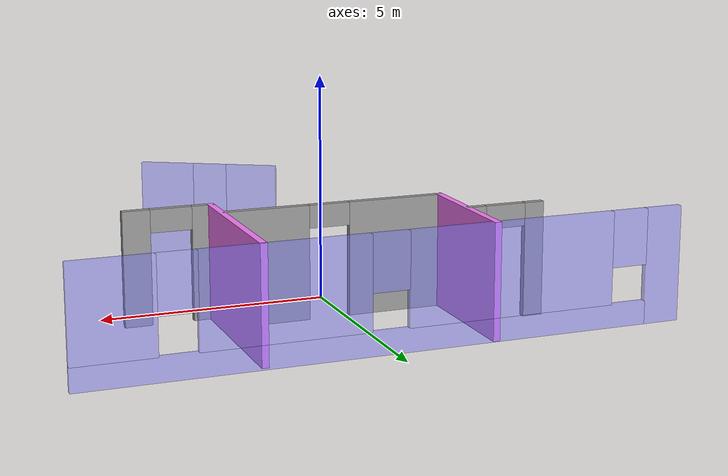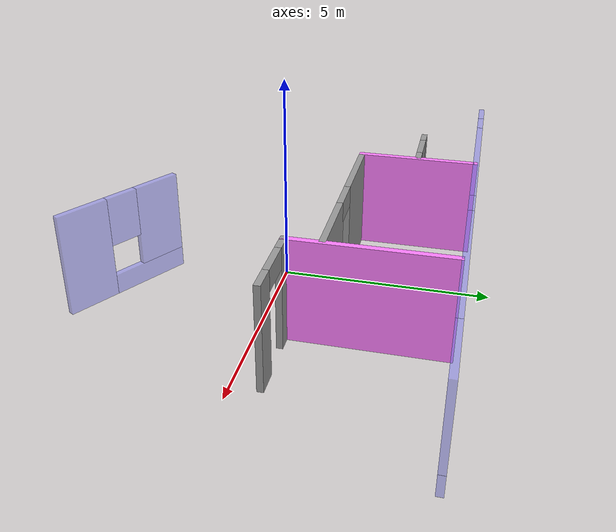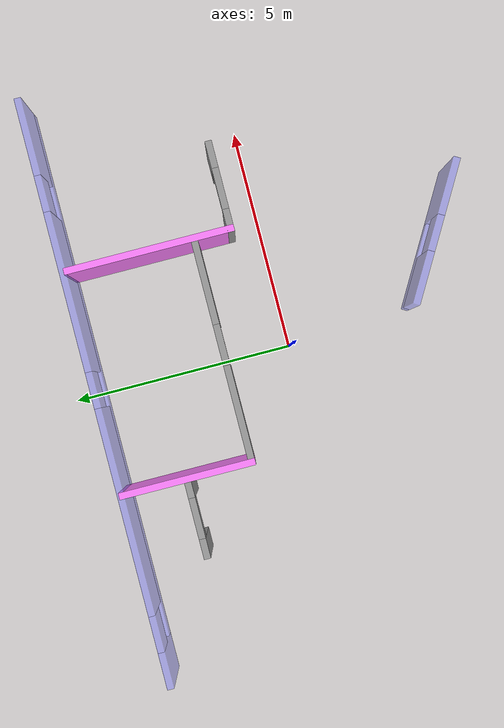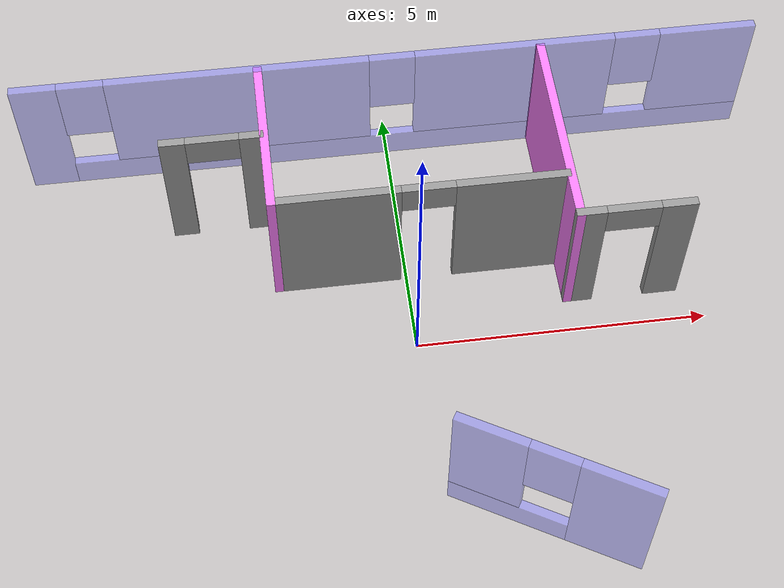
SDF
<sdf version="1.6">
 <model name="house">
  <link name="Wall_11">
   <pose>1.54767 -3.58085 0 0 -0 2.61799</pose>
   <inertial>
    <mass>1</mass>
    <inertia><ixx>1</ixx><ixy>0</ixy><ixz>0</ixz><iyy>1</iyy><iyz>0</iyz><izz>1</izz></inertia>
   </inertial>
   <visual name="Wall_11_Visual_0">
    <pose>-0.990098 0 1.25 0 -0 0</pose>
    <geometry><box><size>1.2698 0.15 2.5</size></box></geometry>
    <material>
     <script><uri>file://media/materials/scripts/gazebo.material</uri><name>Gazebo/Grey</name></script>
     <ambient>0.5 0.5 1 0.5</ambient>
     <shader type="pixel"><normal_map>__default__</normal_map></shader>
     <diffuse>0.7 0.7 0.7 1</diffuse>
     <specular>0.01 0.01 0.01 1</specular>
     <emissive>0 0 0 1</emissive>
    </material>
    <meta><layer>0</layer></meta>
   </visual>
   <visual name="Wall_11_Visual_1">
    <pose>0.634902 0 0.25 0 -0 0</pose>
    <geometry><box><size>1.9802 0.15 0.5</size></box></geometry>
    <material>
     <script><uri>file://media/materials/scripts/gazebo.material</uri><name>Gazebo/Grey</name></script>
     <ambient>0.5 0.5 1 0.5</ambient>
     <shader type="pixel"><normal_map>__default__</normal_map></shader>
     <diffuse>0.7 0.7 0.7 1</diffuse>
     <specular>0.01 0.01 0.01 1</specular>
     <emissive>0 0 0 1</emissive>
    </material>
    <meta><layer>0</layer></meta>
   </visual>
   <visual name="Wall_11_Visual_2">
    <pose>1.0349 0 1.5 0 -0 0</pose>
    <geometry><box><size>1.1802 0.15 2</size></box></geometry>
    <material>
     <script><uri>file://media/materials/scripts/gazebo.material</uri><name>Gazebo/Grey</name></script>
     <ambient>0.5 0.5 1 0.5</ambient>
     <shader type="pixel"><normal_map>__default__</normal_map></shader>
     <diffuse>0.7 0.7 0.7 1</diffuse>
     <specular>0.01 0.01 0.01 1</specular>
     <emissive>0 0 0 1</emissive>
    </material>
    <meta><layer>0</layer></meta>
   </visual>
   <visual name="Wall_11_Visual_3">
    <pose>0.044803 0 1.9 0 -0 0</pose>
    <geometry><box><size>0.8 0.15 1.2</size></box></geometry>
    <material>
     <script><uri>file://media/materials/scripts/gazebo.material</uri><name>Gazebo/Grey</name></script>
     <ambient>0.5 0.5 1 0.5</ambient>
     <shader type="pixel"><normal_map>__default__</normal_map></shader>
     <diffuse>0.7 0.7 0.7 1</diffuse>
     <specular>0.01 0.01 0.01 1</specular>
     <emissive>0 0 0 1</emissive>
    </material>
    <meta><layer>0</layer></meta>
   </visual>
   <collision name="Wall_11_Collision_0">
    <pose>-0.990098 0 1.25 0 -0 0</pose>
    <geometry><box><size>1.2698 0.15 2.5</size></box></geometry>
    <surface>
     <friction>
      <ode><mu>1</mu><mu2>1</mu2><fdir1>0 0 0</fdir1><slip1>0</slip1><slip2>0</slip2></ode>
      <torsional>
       <coefficient>1</coefficient>
       <patch_radius>0</patch_radius>
       <surface_radius>0</surface_radius>
       <use_patch_radius>1</use_patch_radius>
       <ode><slip>0</slip></ode>
      </torsional>
     </friction>
     <bounce><restitution_coefficient>0</restitution_coefficient><threshold>1e+06</threshold></bounce>
     <contact>
      <collide_without_contact>0</collide_without_contact>
      <collide_without_contact_bitmask>1</collide_without_contact_bitmask>
      <collide_bitmask>1</collide_bitmask>
      <ode>
       <soft_cfm>0</soft_cfm>
       <soft_erp>0.2</soft_erp>
       <kp>1e+13</kp>
       <kd>1</kd>
       <max_vel>0.01</max_vel>
       <min_depth>0</min_depth>
      </ode>
      <bullet>
       <split_impulse>1</split_impulse>
       <split_impulse_penetration_threshold>-0.01</split_impulse_penetration_threshold>
       <soft_cfm>0</soft_cfm>
       <soft_erp>0.2</soft_erp>
       <kp>1e+13</kp>
       <kd>1</kd>
      </bullet>
     </contact>
    </surface>
   </collision>
   <collision name="Wall_11_Collision_1">
    <pose>0.634902 0 0.25 0 -0 0</pose>
    <geometry><box><size>1.9802 0.15 0.5</size></box></geometry>
    <surface>
     <friction>
      <ode><mu>1</mu><mu2>1</mu2><fdir1>0 0 0</fdir1><slip1>0</slip1><slip2>0</slip2></ode>
      <torsional>
       <coefficient>1</coefficient>
       <patch_radius>0</patch_radius>
       <surface_radius>0</surface_radius>
       <use_patch_radius>1</use_patch_radius>
       <ode><slip>0</slip></ode>
      </torsional>
     </friction>
     <bounce><restitution_coefficient>0</restitution_coefficient><threshold>1e+06</threshold></bounce>
     <contact>
      <collide_without_contact>0</collide_without_contact>
      <collide_without_contact_bitmask>1</collide_without_contact_bitmask>
      <collide_bitmask>1</collide_bitmask>
      <ode>
       <soft_cfm>0</soft_cfm>
       <soft_erp>0.2</soft_erp>
       <kp>1e+13</kp>
       <kd>1</kd>
       <max_vel>0.01</max_vel>
       <min_depth>0</min_depth>
      </ode>
      <bullet>
       <split_impulse>1</split_impulse>
       <split_impulse_penetration_threshold>-0.01</split_impulse_penetration_threshold>
       <soft_cfm>0</soft_cfm>
       <soft_erp>0.2</soft_erp>
       <kp>1e+13</kp>
       <kd>1</kd>
      </bullet>
     </contact>
    </surface>
   </collision>
   <collision name="Wall_11_Collision_2">
    <pose>1.0349 0 1.5 0 -0 0</pose>
    <geometry><box><size>1.1802 0.15 2</size></box></geometry>
    <surface>
     <friction>
      <ode><mu>1</mu><mu2>1</mu2><fdir1>0 0 0</fdir1><slip1>0</slip1><slip2>0</slip2></ode>
      <torsional>
       <coefficient>1</coefficient>
       <patch_radius>0</patch_radius>
       <surface_radius>0</surface_radius>
       <use_patch_radius>1</use_patch_radius>
       <ode><slip>0</slip></ode>
      </torsional>
     </friction>
     <bounce><restitution_coefficient>0</restitution_coefficient><threshold>1e+06</threshold></bounce>
     <contact>
      <collide_without_contact>0</collide_without_contact>
      <collide_without_contact_bitmask>1</collide_without_contact_bitmask>
      <collide_bitmask>1</collide_bitmask>
      <ode>
       <soft_cfm>0</soft_cfm>
       <soft_erp>0.2</soft_erp>
       <kp>1e+13</kp>
       <kd>1</kd>
       <max_vel>0.01</max_vel>
       <min_depth>0</min_depth>
      </ode>
      <bullet>
       <split_impulse>1</split_impulse>
       <split_impulse_penetration_threshold>-0.01</split_impulse_penetration_threshold>
       <soft_cfm>0</soft_cfm>
       <soft_erp>0.2</soft_erp>
       <kp>1e+13</kp>
       <kd>1</kd>
      </bullet>
     </contact>
    </surface>
   </collision>
   <collision name="Wall_11_Collision_3">
    <pose>0.044803 0 1.9 0 -0 0</pose>
    <geometry><box><size>0.8 0.15 1.2</size></box></geometry>
    <surface>
     <friction>
      <ode><mu>1</mu><mu2>1</mu2><fdir1>0 0 0</fdir1><slip1>0</slip1><slip2>0</slip2></ode>
      <torsional>
       <coefficient>1</coefficient>
       <patch_radius>0</patch_radius>
       <surface_radius>0</surface_radius>
       <use_patch_radius>1</use_patch_radius>
       <ode><slip>0</slip></ode>
      </torsional>
     </friction>
     <bounce><restitution_coefficient>0</restitution_coefficient><threshold>1e+06</threshold></bounce>
     <contact>
      <collide_without_contact>0</collide_without_contact>
      <collide_without_contact_bitmask>1</collide_without_contact_bitmask>
      <collide_bitmask>1</collide_bitmask>
      <ode>
       <soft_cfm>0</soft_cfm>
       <soft_erp>0.2</soft_erp>
       <kp>1e+13</kp>
       <kd>1</kd>
       <max_vel>0.01</max_vel>
       <min_depth>0</min_depth>
      </ode>
      <bullet>
       <split_impulse>1</split_impulse>
       <split_impulse_penetration_threshold>-0.01</split_impulse_penetration_threshold>
       <soft_cfm>0</soft_cfm>
       <soft_erp>0.2</soft_erp>
       <kp>1e+13</kp>
       <kd>1</kd>
      </bullet>
     </contact>
    </surface>
   </collision>
  </link>
  <link name="Wall_27">
   <pose>3.62671 0.655851 0 0 -0 3.14159</pose>
   <inertial>
    <mass>1</mass>
    <inertia><ixx>1</ixx><ixy>0</ixy><ixz>0</ixz><iyy>1</iyy><iyz>0</iyz><izz>1</izz></inertia>
   </inertial>
   <visual name="Wall_27_Visual_0">
    <pose>-0.702488 0 1.25 0 -0 0</pose>
    <geometry><box><size>0.595025 0.15 2.5</size></box></geometry>
    <material>
     <script><uri>file://media/materials/scripts/gazebo.material</uri><name>Gazebo/Grey</name></script>
     <ambient>0.5 0.5 0.5 0.5</ambient>
     <shader type="pixel"><normal_map>__default__</normal_map></shader>
     <diffuse>0.7 0.7 0.7 1</diffuse>
     <specular>0.01 0.01 0.01 1</specular>
     <emissive>0 0 0 1</emissive>
    </material>
    <meta><layer>0</layer></meta>
   </visual>
   <visual name="Wall_27_Visual_1">
    <pose>0.747512 0 1.25 0 -0 0</pose>
    <geometry><box><size>0.504975 0.15 2.5</size></box></geometry>
    <material>
     <script><uri>file://media/materials/scripts/gazebo.material</uri><name>Gazebo/Grey</name></script>
     <ambient>0.5 0.5 0.5 0.5</ambient>
     <shader type="pixel"><normal_map>__default__</normal_map></shader>
     <diffuse>0.7 0.7 0.7 1</diffuse>
     <specular>0.01 0.01 0.01 1</specular>
     <emissive>0 0 0 1</emissive>
    </material>
    <meta><layer>0</layer></meta>
   </visual>
   <visual name="Wall_27_Visual_2">
    <pose>0.045025 0 2.25 0 -0 0</pose>
    <geometry><box><size>0.9 0.15 0.5</size></box></geometry>
    <material>
     <script><uri>file://media/materials/scripts/gazebo.material</uri><name>Gazebo/Grey</name></script>
     <ambient>0.5 0.5 0.5 0.5</ambient>
     <shader type="pixel"><normal_map>__default__</normal_map></shader>
     <diffuse>0.7 0.7 0.7 1</diffuse>
     <specular>0.01 0.01 0.01 1</specular>
     <emissive>0 0 0 1</emissive>
    </material>
    <meta><layer>0</layer></meta>
   </visual>
   <collision name="Wall_27_Collision_0">
    <pose>-0.702488 0 1.25 0 -0 0</pose>
    <geometry><box><size>0.595025 0.15 2.5</size></box></geometry>
    <surface>
     <friction>
      <ode><mu>1</mu><mu2>1</mu2><fdir1>0 0 0</fdir1><slip1>0</slip1><slip2>0</slip2></ode>
      <torsional>
       <coefficient>1</coefficient>
       <patch_radius>0</patch_radius>
       <surface_radius>0</surface_radius>
       <use_patch_radius>1</use_patch_radius>
       <ode><slip>0</slip></ode>
      </torsional>
     </friction>
     <bounce><restitution_coefficient>0</restitution_coefficient><threshold>1e+06</threshold></bounce>
     <contact>
      <collide_without_contact>0</collide_without_contact>
      <collide_without_contact_bitmask>1</collide_without_contact_bitmask>
      <collide_bitmask>1</collide_bitmask>
      <ode>
       <soft_cfm>0</soft_cfm>
       <soft_erp>0.2</soft_erp>
       <kp>1e+13</kp>
       <kd>1</kd>
       <max_vel>0.01</max_vel>
       <min_depth>0</min_depth>
      </ode>
      <bullet>
       <split_impulse>1</split_impulse>
       <split_impulse_penetration_threshold>-0.01</split_impulse_penetration_threshold>
       <soft_cfm>0</soft_cfm>
       <soft_erp>0.2</soft_erp>
       <kp>1e+13</kp>
       <kd>1</kd>
      </bullet>
     </contact>
    </surface>
   </collision>
   <collision name="Wall_27_Collision_2">
    <pose>0.045025 0 2.25 0 -0 0</pose>
    <geometry><box><size>0.9 0.15 0.5</size></box></geometry>
    <surface>
     <friction>
      <ode><mu>1</mu><mu2>1</mu2><fdir1>0 0 0</fdir1><slip1>0</slip1><slip2>0</slip2></ode>
      <torsional>
       <coefficient>1</coefficient>
       <patch_radius>0</patch_radius>
       <surface_radius>0</surface_radius>
       <use_patch_radius>1</use_patch_radius>
       <ode><slip>0</slip></ode>
      </torsional>
     </friction>
     <bounce><restitution_coefficient>0</restitution_coefficient><threshold>1e+06</threshold></bounce>
     <contact>
      <collide_without_contact>0</collide_without_contact>
      <collide_without_contact_bitmask>1</collide_without_contact_bitmask>
      <collide_bitmask>1</collide_bitmask>
      <ode>
       <soft_cfm>0</soft_cfm>
       <soft_erp>0.2</soft_erp>
       <kp>1e+13</kp>
       <kd>1</kd>
       <max_vel>0.01</max_vel>
       <min_depth>0</min_depth>
      </ode>
      <bullet>
       <split_impulse>1</split_impulse>
       <split_impulse_penetration_threshold>-0.01</split_impulse_penetration_threshold>
       <soft_cfm>0</soft_cfm>
       <soft_erp>0.2</soft_erp>
       <kp>1e+13</kp>
       <kd>1</kd>
      </bullet>
     </contact>
    </surface>
   </collision>
   <collision name="Wall_27_Collision_1">
    <pose>0.747512 0 1.25 0 -0 0</pose>
    <geometry><box><size>0.504975 0.15 2.5</size></box></geometry>
    <surface>
     <friction>
      <ode><mu>1</mu><mu2>1</mu2><fdir1>0 0 0</fdir1><slip1>0</slip1><slip2>0</slip2></ode>
      <torsional>
       <coefficient>1</coefficient>
       <patch_radius>0</patch_radius>
       <surface_radius>0</surface_radius>
       <use_patch_radius>1</use_patch_radius>
       <ode><slip>0</slip></ode>
      </torsional>
     </friction>
     <bounce><restitution_coefficient>0</restitution_coefficient><threshold>1e+06</threshold></bounce>
     <contact>
      <collide_without_contact>0</collide_without_contact>
      <collide_without_contact_bitmask>1</collide_without_contact_bitmask>
      <collide_bitmask>1</collide_bitmask>
      <ode>
       <soft_cfm>0</soft_cfm>
       <soft_erp>0.2</soft_erp>
       <kp>1e+13</kp>
       <kd>1</kd>
       <max_vel>0.01</max_vel>
       <min_depth>0</min_depth>
      </ode>
      <bullet>
       <split_impulse>1</split_impulse>
       <split_impulse_penetration_threshold>-0.01</split_impulse_penetration_threshold>
       <soft_cfm>0</soft_cfm>
       <soft_erp>0.2</soft_erp>
       <kp>1e+13</kp>
       <kd>1</kd>
      </bullet>
     </contact>
    </surface>
   </collision>
  </link>
  <link name="Wall_29">
   <pose>2.70171 2.45585 0 0 -0 1.5708</pose>
   <inertial>
    <mass>1</mass>
    <inertia><ixx>1</ixx><ixy>0</ixy><ixz>0</ixz><iyy>1</iyy><iyz>0</iyz><izz>1</izz></inertia>
   </inertial>
   <visual name="Wall_29_Visual">
    <pose>0 0 1.25 0 -0 0</pose>
    <geometry><box><size>3.75 0.15 2.5</size></box></geometry>
    <material>
     <script><uri>file://media/materials/scripts/gazebo.material</uri><name>Gazebo/Grey</name></script>
     <ambient>1 0.5 1 1</ambient>
     <shader type="pixel"><normal_map>__default__</normal_map></shader>
     <diffuse>0.7 0.7 0.7 1</diffuse>
     <specular>0.01 0.01 0.01 1</specular>
     <emissive>0 0 0 1</emissive>
    </material>
    <meta><layer>0</layer></meta>
   </visual>
   <collision name="Wall_29_Collision">
    <pose>0 0 1.25 0 -0 0</pose>
    <geometry><box><size>3.75 0.15 2.5</size></box></geometry>
    <surface>
     <friction>
      <ode><mu>1</mu><mu2>1</mu2><fdir1>0 0 0</fdir1><slip1>0</slip1><slip2>0</slip2></ode>
      <torsional>
       <coefficient>1</coefficient>
       <patch_radius>0</patch_radius>
       <surface_radius>0</surface_radius>
       <use_patch_radius>1</use_patch_radius>
       <ode><slip>0</slip></ode>
      </torsional>
     </friction>
     <bounce><restitution_coefficient>0</restitution_coefficient><threshold>1e+06</threshold></bounce>
     <contact>
      <collide_without_contact>0</collide_without_contact>
      <collide_without_contact_bitmask>1</collide_without_contact_bitmask>
      <collide_bitmask>1</collide_bitmask>
      <ode>
       <soft_cfm>0</soft_cfm>
       <soft_erp>0.2</soft_erp>
       <kp>1e+13</kp>
       <kd>1</kd>
       <max_vel>0.01</max_vel>
       <min_depth>0</min_depth>
      </ode>
      <bullet>
       <split_impulse>1</split_impulse>
       <split_impulse_penetration_threshold>-0.01</split_impulse_penetration_threshold>
       <soft_cfm>0</soft_cfm>
       <soft_erp>0.2</soft_erp>
       <kp>1e+13</kp>
       <kd>1</kd>
      </bullet>
     </contact>
    </surface>
   </collision>
  </link>
  <link name="Wall_3">
   <pose>0.026713 4.35585 0 0 -0 0</pose>
   <inertial>
    <mass>1</mass>
    <inertia><ixx>1</ixx><ixy>0</ixy><ixz>0</ixz><iyy>1</iyy><iyz>0</iyz><izz>1</izz></inertia>
   </inertial>
   <visual name="Wall_3_Visual_0">
    <pose>-6.0975 0 1.25 0 -0 0</pose>
    <geometry><box><size>0.805004 0.15 2.5</size></box></geometry>
    <material>
     <script><uri>file://media/materials/scripts/gazebo.material</uri><name>Gazebo/Grey</name></script>
     <ambient>0.5 0.5 1 0.5</ambient>
     <shader type="pixel"><normal_map>__default__</normal_map></shader>
     <diffuse>0.7 0.7 0.7 1</diffuse>
     <specular>0.01 0.01 0.01 1</specular>
     <emissive>0 0 0 1</emissive>
    </material>
    <meta><layer>0</layer></meta>
   </visual>
   <visual name="Wall_3_Visual_1">
    <pose>0.402502 0 0.25 0 -0 0</pose>
    <geometry><box><size>12.195 0.15 0.5</size></box></geometry>
    <material>
     <script><uri>file://media/materials/scripts/gazebo.material</uri><name>Gazebo/Grey</name></script>
     <ambient>0.5 0.5 1 0.5</ambient>
     <shader type="pixel"><normal_map>__default__</normal_map></shader>
     <diffuse>0.7 0.7 0.7 1</diffuse>
     <specular>0.01 0.01 0.01 1</specular>
     <emissive>0 0 0 1</emissive>
    </material>
    <meta><layer>0</layer></meta>
   </visual>
   <visual name="Wall_3_Visual_2">
    <pose>-2.60983 0 1.5 0 -0 0</pose>
    <geometry><box><size>4.57032 0.15 2</size></box></geometry>
    <material>
     <script><uri>file://media/materials/scripts/gazebo.material</uri><name>Gazebo/Grey</name></script>
     <ambient>0.5 0.5 1 0.5</ambient>
     <shader type="pixel"><normal_map>__default__</normal_map></shader>
     <diffuse>0.7 0.7 0.7 1</diffuse>
     <specular>0.01 0.01 0.01 1</specular>
     <emissive>0 0 0 1</emissive>
    </material>
    <meta><layer>0</layer></meta>
   </visual>
   <visual name="Wall_3_Visual_3">
    <pose>2.23754 0 1.5 0 -0 0</pose>
    <geometry><box><size>3.52442 0.15 2</size></box></geometry>
    <material>
     <script><uri>file://media/materials/scripts/gazebo.material</uri><name>Gazebo/Grey</name></script>
     <ambient>0.5 0.5 1 0.5</ambient>
     <shader type="pixel"><normal_map>__default__</normal_map></shader>
     <diffuse>0.7 0.7 0.7 1</diffuse>
     <specular>0.01 0.01 0.01 1</specular>
     <emissive>0 0 0 1</emissive>
    </material>
    <meta><layer>0</layer></meta>
   </visual>
   <visual name="Wall_3_Visual_4">
    <pose>5.64987 0 1.5 0 -0 0</pose>
    <geometry><box><size>1.70026 0.15 2</size></box></geometry>
    <material>
     <script><uri>file://media/materials/scripts/gazebo.material</uri><name>Gazebo/Grey</name></script>
     <ambient>0.5 0.5 1 0.5</ambient>
     <shader type="pixel"><normal_map>__default__</normal_map></shader>
     <diffuse>0.7 0.7 0.7 1</diffuse>
     <specular>0.01 0.01 0.01 1</specular>
     <emissive>0 0 0 1</emissive>
    </material>
    <meta><layer>0</layer></meta>
   </visual>
   <visual name="Wall_3_Visual_5">
    <pose>-5.295 0 1.9 0 -0 0</pose>
    <geometry><box><size>0.8 0.15 1.2</size></box></geometry>
    <material>
     <script><uri>file://media/materials/scripts/gazebo.material</uri><name>Gazebo/Grey</name></script>
     <ambient>0.5 0.5 1 0.5</ambient>
     <shader type="pixel"><normal_map>__default__</normal_map></shader>
     <diffuse>0.7 0.7 0.7 1</diffuse>
     <specular>0.01 0.01 0.01 1</specular>
     <emissive>0 0 0 1</emissive>
    </material>
    <meta><layer>0</layer></meta>
   </visual>
   <visual name="Wall_3_Visual_6">
    <pose>0.075327 0 1.9 0 -0 0</pose>
    <geometry><box><size>0.8 0.15 1.2</size></box></geometry>
    <material>
     <script><uri>file://media/materials/scripts/gazebo.material</uri><name>Gazebo/Grey</name></script>
     <ambient>0.5 0.5 1 0.5</ambient>
     <shader type="pixel"><normal_map>__default__</normal_map></shader>
     <diffuse>0.7 0.7 0.7 1</diffuse>
     <specular>0.01 0.01 0.01 1</specular>
     <emissive>0 0 0 1</emissive>
    </material>
    <meta><layer>0</layer></meta>
   </visual>
   <visual name="Wall_3_Visual_7">
    <pose>4.39975 0 1.9 0 -0 0</pose>
    <geometry><box><size>0.8 0.15 1.2</size></box></geometry>
    <material>
     <script><uri>file://media/materials/scripts/gazebo.material</uri><name>Gazebo/Grey</name></script>
     <ambient>0.5 0.5 1 0.5</ambient>
     <shader type="pixel"><normal_map>__default__</normal_map></shader>
     <diffuse>0.7 0.7 0.7 1</diffuse>
     <specular>0.01 0.01 0.01 1</specular>
     <emissive>0 0 0 1</emissive>
    </material>
    <meta><layer>0</layer></meta>
   </visual>
   <collision name="Wall_3_Collision_0">
    <pose>-6.0975 0 1.25 0 -0 0</pose>
    <geometry><box><size>0.805004 0.15 2.5</size></box></geometry>
    <surface>
     <friction>
      <ode><mu>1</mu><mu2>1</mu2><fdir1>0 0 0</fdir1><slip1>0</slip1><slip2>0</slip2></ode>
      <torsional>
       <coefficient>1</coefficient>
       <patch_radius>0</patch_radius>
       <surface_radius>0</surface_radius>
       <use_patch_radius>1</use_patch_radius>
       <ode><slip>0</slip></ode>
      </torsional>
     </friction>
     <bounce><restitution_coefficient>0</restitution_coefficient><threshold>1e+06</threshold></bounce>
     <contact>
      <collide_without_contact>0</collide_without_contact>
      <collide_without_contact_bitmask>1</collide_without_contact_bitmask>
      <collide_bitmask>1</collide_bitmask>
      <ode>
       <soft_cfm>0</soft_cfm>
       <soft_erp>0.2</soft_erp>
       <kp>1e+13</kp>
       <kd>1</kd>
       <max_vel>0.01</max_vel>
       <min_depth>0</min_depth>
      </ode>
      <bullet>
       <split_impulse>1</split_impulse>
       <split_impulse_penetration_threshold>-0.01</split_impulse_penetration_threshold>
       <soft_cfm>0</soft_cfm>
       <soft_erp>0.2</soft_erp>
       <kp>1e+13</kp>
       <kd>1</kd>
      </bullet>
     </contact>
    </surface>
   </collision>
   <collision name="Wall_3_Collision_1">
    <pose>0.402502 0 0.25 0 -0 0</pose>
    <geometry><box><size>12.195 0.15 0.5</size></box></geometry>
    <surface>
     <friction>
      <ode><mu>1</mu><mu2>1</mu2><fdir1>0 0 0</fdir1><slip1>0</slip1><slip2>0</slip2></ode>
      <torsional>
       <coefficient>1</coefficient>
       <patch_radius>0</patch_radius>
       <surface_radius>0</surface_radius>
       <use_patch_radius>1</use_patch_radius>
       <ode><slip>0</slip></ode>
      </torsional>
     </friction>
     <bounce><restitution_coefficient>0</restitution_coefficient><threshold>1e+06</threshold></bounce>
     <contact>
      <collide_without_contact>0</collide_without_contact>
      <collide_without_contact_bitmask>1</collide_without_contact_bitmask>
      <collide_bitmask>1</collide_bitmask>
      <ode>
       <soft_cfm>0</soft_cfm>
       <soft_erp>0.2</soft_erp>
       <kp>1e+13</kp>
       <kd>1</kd>
       <max_vel>0.01</max_vel>
       <min_depth>0</min_depth>
      </ode>
      <bullet>
       <split_impulse>1</split_impulse>
       <split_impulse_penetration_threshold>-0.01</split_impulse_penetration_threshold>
       <soft_cfm>0</soft_cfm>
       <soft_erp>0.2</soft_erp>
       <kp>1e+13</kp>
       <kd>1</kd>
      </bullet>
     </contact>
    </surface>
   </collision>
   <collision name="Wall_3_Collision_2">
    <pose>-2.60983 0 1.5 0 -0 0</pose>
    <geometry><box><size>4.57032 0.15 2</size></box></geometry>
    <surface>
     <friction>
      <ode><mu>1</mu><mu2>1</mu2><fdir1>0 0 0</fdir1><slip1>0</slip1><slip2>0</slip2></ode>
      <torsional>
       <coefficient>1</coefficient>
       <patch_radius>0</patch_radius>
       <surface_radius>0</surface_radius>
       <use_patch_radius>1</use_patch_radius>
       <ode><slip>0</slip></ode>
      </torsional>
     </friction>
     <bounce><restitution_coefficient>0</restitution_coefficient><threshold>1e+06</threshold></bounce>
     <contact>
      <collide_without_contact>0</collide_without_contact>
      <collide_without_contact_bitmask>1</collide_without_contact_bitmask>
      <collide_bitmask>1</collide_bitmask>
      <ode>
       <soft_cfm>0</soft_cfm>
       <soft_erp>0.2</soft_erp>
       <kp>1e+13</kp>
       <kd>1</kd>
       <max_vel>0.01</max_vel>
       <min_depth>0</min_depth>
      </ode>
      <bullet>
       <split_impulse>1</split_impulse>
       <split_impulse_penetration_threshold>-0.01</split_impulse_penetration_threshold>
       <soft_cfm>0</soft_cfm>
       <soft_erp>0.2</soft_erp>
       <kp>1e+13</kp>
       <kd>1</kd>
      </bullet>
     </contact>
    </surface>
   </collision>
   <collision name="Wall_3_Collision_3">
    <pose>2.23754 0 1.5 0 -0 0</pose>
    <geometry><box><size>3.52442 0.15 2</size></box></geometry>
    <surface>
     <friction>
      <ode><mu>1</mu><mu2>1</mu2><fdir1>0 0 0</fdir1><slip1>0</slip1><slip2>0</slip2></ode>
      <torsional>
       <coefficient>1</coefficient>
       <patch_radius>0</patch_radius>
       <surface_radius>0</surface_radius>
       <use_patch_radius>1</use_patch_radius>
       <ode><slip>0</slip></ode>
      </torsional>
     </friction>
     <bounce><restitution_coefficient>0</restitution_coefficient><threshold>1e+06</threshold></bounce>
     <contact>
      <collide_without_contact>0</collide_without_contact>
      <collide_without_contact_bitmask>1</collide_without_contact_bitmask>
      <collide_bitmask>1</collide_bitmask>
      <ode>
       <soft_cfm>0</soft_cfm>
       <soft_erp>0.2</soft_erp>
       <kp>1e+13</kp>
       <kd>1</kd>
       <max_vel>0.01</max_vel>
       <min_depth>0</min_depth>
      </ode>
      <bullet>
       <split_impulse>1</split_impulse>
       <split_impulse_penetration_threshold>-0.01</split_impulse_penetration_threshold>
       <soft_cfm>0</soft_cfm>
       <soft_erp>0.2</soft_erp>
       <kp>1e+13</kp>
       <kd>1</kd>
      </bullet>
     </contact>
    </surface>
   </collision>
   <collision name="Wall_3_Collision_4">
    <pose>5.64987 0 1.5 0 -0 0</pose>
    <geometry><box><size>1.70026 0.15 2</size></box></geometry>
    <surface>
     <friction>
      <ode><mu>1</mu><mu2>1</mu2><fdir1>0 0 0</fdir1><slip1>0</slip1><slip2>0</slip2></ode>
      <torsional>
       <coefficient>1</coefficient>
       <patch_radius>0</patch_radius>
       <surface_radius>0</surface_radius>
       <use_patch_radius>1</use_patch_radius>
       <ode><slip>0</slip></ode>
      </torsional>
     </friction>
     <bounce><restitution_coefficient>0</restitution_coefficient><threshold>1e+06</threshold></bounce>
     <contact>
      <collide_without_contact>0</collide_without_contact>
      <collide_without_contact_bitmask>1</collide_without_contact_bitmask>
      <collide_bitmask>1</collide_bitmask>
      <ode>
       <soft_cfm>0</soft_cfm>
       <soft_erp>0.2</soft_erp>
       <kp>1e+13</kp>
       <kd>1</kd>
       <max_vel>0.01</max_vel>
       <min_depth>0</min_depth>
      </ode>
      <bullet>
       <split_impulse>1</split_impulse>
       <split_impulse_penetration_threshold>-0.01</split_impulse_penetration_threshold>
       <soft_cfm>0</soft_cfm>
       <soft_erp>0.2</soft_erp>
       <kp>1e+13</kp>
       <kd>1</kd>
      </bullet>
     </contact>
    </surface>
   </collision>
   <collision name="Wall_3_Collision_6">
    <pose>0.075327 0 1.9 0 -0 0</pose>
    <geometry><box><size>0.8 0.15 1.2</size></box></geometry>
    <surface>
     <friction>
      <ode><mu>1</mu><mu2>1</mu2><fdir1>0 0 0</fdir1><slip1>0</slip1><slip2>0</slip2></ode>
      <torsional>
       <coefficient>1</coefficient>
       <patch_radius>0</patch_radius>
       <surface_radius>0</surface_radius>
       <use_patch_radius>1</use_patch_radius>
       <ode><slip>0</slip></ode>
      </torsional>
     </friction>
     <bounce><restitution_coefficient>0</restitution_coefficient><threshold>1e+06</threshold></bounce>
     <contact>
      <collide_without_contact>0</collide_without_contact>
      <collide_without_contact_bitmask>1</collide_without_contact_bitmask>
      <collide_bitmask>1</collide_bitmask>
      <ode>
       <soft_cfm>0</soft_cfm>
       <soft_erp>0.2</soft_erp>
       <kp>1e+13</kp>
       <kd>1</kd>
       <max_vel>0.01</max_vel>
       <min_depth>0</min_depth>
      </ode>
      <bullet>
       <split_impulse>1</split_impulse>
       <split_impulse_penetration_threshold>-0.01</split_impulse_penetration_threshold>
       <soft_cfm>0</soft_cfm>
       <soft_erp>0.2</soft_erp>
       <kp>1e+13</kp>
       <kd>1</kd>
      </bullet>
     </contact>
    </surface>
   </collision>
   <collision name="Wall_3_Collision_5">
    <pose>-5.295 0 1.9 0 -0 0</pose>
    <geometry><box><size>0.8 0.15 1.2</size></box></geometry>
    <surface>
     <friction>
      <ode><mu>1</mu><mu2>1</mu2><fdir1>0 0 0</fdir1><slip1>0</slip1><slip2>0</slip2></ode>
      <torsional>
       <coefficient>1</coefficient>
       <patch_radius>0</patch_radius>
       <surface_radius>0</surface_radius>
       <use_patch_radius>1</use_patch_radius>
       <ode><slip>0</slip></ode>
      </torsional>
     </friction>
     <bounce><restitution_coefficient>0</restitution_coefficient><threshold>1e+06</threshold></bounce>
     <contact>
      <collide_without_contact>0</collide_without_contact>
      <collide_without_contact_bitmask>1</collide_without_contact_bitmask>
      <collide_bitmask>1</collide_bitmask>
      <ode>
       <soft_cfm>0</soft_cfm>
       <soft_erp>0.2</soft_erp>
       <kp>1e+13</kp>
       <kd>1</kd>
       <max_vel>0.01</max_vel>
       <min_depth>0</min_depth>
      </ode>
      <bullet>
       <split_impulse>1</split_impulse>
       <split_impulse_penetration_threshold>-0.01</split_impulse_penetration_threshold>
       <soft_cfm>0</soft_cfm>
       <soft_erp>0.2</soft_erp>
       <kp>1e+13</kp>
       <kd>1</kd>
      </bullet>
     </contact>
    </surface>
   </collision>
   <collision name="Wall_3_Collision_7">
    <pose>4.39975 0 1.9 0 -0 0</pose>
    <geometry><box><size>0.8 0.15 1.2</size></box></geometry>
    <surface>
     <friction>
      <ode><mu>1</mu><mu2>1</mu2><fdir1>0 0 0</fdir1><slip1>0</slip1><slip2>0</slip2></ode>
      <torsional>
       <coefficient>1</coefficient>
       <patch_radius>0</patch_radius>
       <surface_radius>0</surface_radius>
       <use_patch_radius>1</use_patch_radius>
       <ode><slip>0</slip></ode>
      </torsional>
     </friction>
     <bounce><restitution_coefficient>0</restitution_coefficient><threshold>1e+06</threshold></bounce>
     <contact>
      <collide_without_contact>0</collide_without_contact>
      <collide_without_contact_bitmask>1</collide_without_contact_bitmask>
      <collide_bitmask>1</collide_bitmask>
      <ode>
       <soft_cfm>0</soft_cfm>
       <soft_erp>0.2</soft_erp>
       <kp>1e+13</kp>
       <kd>1</kd>
       <max_vel>0.01</max_vel>
       <min_depth>0</min_depth>
      </ode>
      <bullet>
       <split_impulse>1</split_impulse>
       <split_impulse_penetration_threshold>-0.01</split_impulse_penetration_threshold>
       <soft_cfm>0</soft_cfm>
       <soft_erp>0.2</soft_erp>
       <kp>1e+13</kp>
       <kd>1</kd>
      </bullet>
     </contact>
    </surface>
   </collision>
  </link>
  <link name="Wall_31">
   <pose>-2.22775 2.89498 0 0 0 -1.5708</pose>
   <inertial>
    <mass>1</mass>
    <inertia><ixx>1</ixx><ixy>0</ixy><ixz>0</ixz><iyy>1</iyy><iyz>0</iyz><izz>1</izz></inertia>
   </inertial>
   <visual name="Wall_31_Visual">
    <pose>0 0 1.25 0 -0 0</pose>
    <geometry><box><size>3 0.15 2.5</size></box></geometry>
    <material>
     <script><uri>file://media/materials/scripts/gazebo.material</uri><name>Gazebo/Grey</name></script>
     <ambient>1 0.5 1 1</ambient>
     <shader type="pixel"><normal_map>__default__</normal_map></shader>
     <diffuse>0.7 0.7 0.7 1</diffuse>
     <specular>0.01 0.01 0.01 1</specular>
     <emissive>0 0 0 1</emissive>
    </material>
    <meta><layer>0</layer></meta>
   </visual>
   <collision name="Wall_31_Collision">
    <pose>0 0 1.25 0 -0 0</pose>
    <geometry><box><size>3 0.15 2.5</size></box></geometry>
    <surface>
     <friction>
      <ode><mu>1</mu><mu2>1</mu2><fdir1>0 0 0</fdir1><slip1>0</slip1><slip2>0</slip2></ode>
      <torsional>
       <coefficient>1</coefficient>
       <patch_radius>0</patch_radius>
       <surface_radius>0</surface_radius>
       <use_patch_radius>1</use_patch_radius>
       <ode><slip>0</slip></ode>
      </torsional>
     </friction>
     <bounce><restitution_coefficient>0</restitution_coefficient><threshold>1e+06</threshold></bounce>
     <contact>
      <collide_without_contact>0</collide_without_contact>
      <collide_without_contact_bitmask>1</collide_without_contact_bitmask>
      <collide_bitmask>1</collide_bitmask>
      <ode>
       <soft_cfm>0</soft_cfm>
       <soft_erp>0.2</soft_erp>
       <kp>1e+13</kp>
       <kd>1</kd>
       <max_vel>0.01</max_vel>
       <min_depth>0</min_depth>
      </ode>
      <bullet>
       <split_impulse>1</split_impulse>
       <split_impulse_penetration_threshold>-0.01</split_impulse_penetration_threshold>
       <soft_cfm>0</soft_cfm>
       <soft_erp>0.2</soft_erp>
       <kp>1e+13</kp>
       <kd>1</kd>
      </bullet>
     </contact>
    </surface>
   </collision>
  </link>
  <link name="Wall_32">
   <pose>0.197247 1.46999 0 0 -0 0</pose>
   <inertial>
    <mass>1</mass>
    <inertia><ixx>1</ixx><ixy>0</ixy><ixz>0</ixz><iyy>1</iyy><iyz>0</iyz><izz>1</izz></inertia>
   </inertial>
   <visual name="Wall_32_Visual_0">
    <pose>-1.39778 0 1.25 0 -0 0</pose>
    <geometry><box><size>2.20444 0.15 2.5</size></box></geometry>
    <material>
     <script><uri>file://media/materials/scripts/gazebo.material</uri><name>Gazebo/Grey</name></script>
     <ambient>0.5 0.5 0.5 0.5</ambient>
     <shader type="pixel"><normal_map>__default__</normal_map></shader>
     <diffuse>0.7 0.7 0.7 1</diffuse>
     <specular>0.01 0.01 0.01 1</specular>
     <emissive>0 0 0 1</emissive>
    </material>
    <meta><layer>0</layer></meta>
   </visual>
   <visual name="Wall_32_Visual_1">
    <pose>1.55222 0 1.25 0 -0 0</pose>
    <geometry><box><size>1.89556 0.15 2.5</size></box></geometry>
    <material>
     <script><uri>file://media/materials/scripts/gazebo.material</uri><name>Gazebo/Grey</name></script>
     <ambient>0.5 0.5 0.5 0.5</ambient>
     <shader type="pixel"><normal_map>__default__</normal_map></shader>
     <diffuse>0.7 0.7 0.7 1</diffuse>
     <specular>0.01 0.01 0.01 1</specular>
     <emissive>0 0 0 1</emissive>
    </material>
    <meta><layer>0</layer></meta>
   </visual>
   <visual name="Wall_32_Visual_2">
    <pose>0.154436 0 2.25 0 -0 0</pose>
    <geometry><box><size>0.9 0.15 0.5</size></box></geometry>
    <material>
     <script><uri>file://media/materials/scripts/gazebo.material</uri><name>Gazebo/Grey</name></script>
     <ambient>0.5 0.5 0.5 0.5</ambient>
     <shader type="pixel"><normal_map>__default__</normal_map></shader>
     <diffuse>0.7 0.7 0.7 1</diffuse>
     <specular>0.01 0.01 0.01 1</specular>
     <emissive>0 0 0 1</emissive>
    </material>
    <meta><layer>0</layer></meta>
   </visual>
   <collision name="Wall_32_Collision_0">
    <pose>-1.39778 0 1.25 0 -0 0</pose>
    <geometry><box><size>2.20444 0.15 2.5</size></box></geometry>
    <surface>
     <friction>
      <ode><mu>1</mu><mu2>1</mu2><fdir1>0 0 0</fdir1><slip1>0</slip1><slip2>0</slip2></ode>
      <torsional>
       <coefficient>1</coefficient>
       <patch_radius>0</patch_radius>
       <surface_radius>0</surface_radius>
       <use_patch_radius>1</use_patch_radius>
       <ode><slip>0</slip></ode>
      </torsional>
     </friction>
     <bounce><restitution_coefficient>0</restitution_coefficient><threshold>1e+06</threshold></bounce>
     <contact>
      <collide_without_contact>0</collide_without_contact>
      <collide_without_contact_bitmask>1</collide_without_contact_bitmask>
      <collide_bitmask>1</collide_bitmask>
      <ode>
       <soft_cfm>0</soft_cfm>
       <soft_erp>0.2</soft_erp>
       <kp>1e+13</kp>
       <kd>1</kd>
       <max_vel>0.01</max_vel>
       <min_depth>0</min_depth>
      </ode>
      <bullet>
       <split_impulse>1</split_impulse>
       <split_impulse_penetration_threshold>-0.01</split_impulse_penetration_threshold>
       <soft_cfm>0</soft_cfm>
       <soft_erp>0.2</soft_erp>
       <kp>1e+13</kp>
       <kd>1</kd>
      </bullet>
     </contact>
    </surface>
   </collision>
   <collision name="Wall_32_Collision_1">
    <pose>1.55222 0 1.25 0 -0 0</pose>
    <geometry><box><size>1.89556 0.15 2.5</size></box></geometry>
    <surface>
     <friction>
      <ode><mu>1</mu><mu2>1</mu2><fdir1>0 0 0</fdir1><slip1>0</slip1><slip2>0</slip2></ode>
      <torsional>
       <coefficient>1</coefficient>
       <patch_radius>0</patch_radius>
       <surface_radius>0</surface_radius>
       <use_patch_radius>1</use_patch_radius>
       <ode><slip>0</slip></ode>
      </torsional>
     </friction>
     <bounce><restitution_coefficient>0</restitution_coefficient><threshold>1e+06</threshold></bounce>
     <contact>
      <collide_without_contact>0</collide_without_contact>
      <collide_without_contact_bitmask>1</collide_without_contact_bitmask>
      <collide_bitmask>1</collide_bitmask>
      <ode>
       <soft_cfm>0</soft_cfm>
       <soft_erp>0.2</soft_erp>
       <kp>1e+13</kp>
       <kd>1</kd>
       <max_vel>0.01</max_vel>
       <min_depth>0</min_depth>
      </ode>
      <bullet>
       <split_impulse>1</split_impulse>
       <split_impulse_penetration_threshold>-0.01</split_impulse_penetration_threshold>
       <soft_cfm>0</soft_cfm>
       <soft_erp>0.2</soft_erp>
       <kp>1e+13</kp>
       <kd>1</kd>
      </bullet>
     </contact>
    </surface>
   </collision>
   <collision name="Wall_32_Collision_2">
    <pose>0.154436 0 2.25 0 -0 0</pose>
    <geometry><box><size>0.9 0.15 0.5</size></box></geometry>
    <surface>
     <friction>
      <ode><mu>1</mu><mu2>1</mu2><fdir1>0 0 0</fdir1><slip1>0</slip1><slip2>0</slip2></ode>
      <torsional>
       <coefficient>1</coefficient>
       <patch_radius>0</patch_radius>
       <surface_radius>0</surface_radius>
       <use_patch_radius>1</use_patch_radius>
       <ode><slip>0</slip></ode>
      </torsional>
     </friction>
     <bounce><restitution_coefficient>0</restitution_coefficient><threshold>1e+06</threshold></bounce>
     <contact>
      <collide_without_contact>0</collide_without_contact>
      <collide_without_contact_bitmask>1</collide_without_contact_bitmask>
      <collide_bitmask>1</collide_bitmask>
      <ode>
       <soft_cfm>0</soft_cfm>
       <soft_erp>0.2</soft_erp>
       <kp>1e+13</kp>
       <kd>1</kd>
       <max_vel>0.01</max_vel>
       <min_depth>0</min_depth>
      </ode>
      <bullet>
       <split_impulse>1</split_impulse>
       <split_impulse_penetration_threshold>-0.01</split_impulse_penetration_threshold>
       <soft_cfm>0</soft_cfm>
       <soft_erp>0.2</soft_erp>
       <kp>1e+13</kp>
       <kd>1</kd>
      </bullet>
     </contact>
    </surface>
   </collision>
  </link>
  <link name="Wall_34">
   <pose>-3.10834 2.90084 0 0 -0 3.14159</pose>
   <inertial>
    <mass>1</mass>
    <inertia><ixx>1</ixx><ixy>0</ixy><ixz>0</ixz><iyy>1</iyy><iyz>0</iyz><izz>1</izz></inertia>
   </inertial>
   <visual name="Wall_34_Visual_0">
    <pose>-0.66928 0 1.25 0 -0 0</pose>
    <geometry><box><size>0.411441 0.15 2.5</size></box></geometry>
    <material>
     <script><uri>file://media/materials/scripts/gazebo.material</uri><name>Gazebo/Grey</name></script>
     <ambient>0.5 0.5 0.5 0.5</ambient>
     <shader type="pixel"><normal_map>__default__</normal_map></shader>
     <diffuse>0.7 0.7 0.7 1</diffuse>
     <specular>0.01 0.01 0.01 1</specular>
     <emissive>0 0 0 1</emissive>
    </material>
    <meta><layer>0</layer></meta>
   </visual>
   <visual name="Wall_34_Visual_1">
    <pose>0.65572 0 1.25 0 -0 0</pose>
    <geometry><box><size>0.438559 0.15 2.5</size></box></geometry>
    <material>
     <script><uri>file://media/materials/scripts/gazebo.material</uri><name>Gazebo/Grey</name></script>
     <ambient>0.5 0.5 0.5 0.5</ambient>
     <shader type="pixel"><normal_map>__default__</normal_map></shader>
     <diffuse>0.7 0.7 0.7 1</diffuse>
     <specular>0.01 0.01 0.01 1</specular>
     <emissive>0 0 0 1</emissive>
    </material>
    <meta><layer>0</layer></meta>
   </visual>
   <visual name="Wall_34_Visual_2">
    <pose>-0.013559 0 2.25 0 -0 0</pose>
    <geometry><box><size>0.9 0.15 0.5</size></box></geometry>
    <material>
     <script><uri>file://media/materials/scripts/gazebo.material</uri><name>Gazebo/Grey</name></script>
     <ambient>0.5 0.5 0.5 0.5</ambient>
     <shader type="pixel"><normal_map>__default__</normal_map></shader>
     <diffuse>0.7 0.7 0.7 1</diffuse>
     <specular>0.01 0.01 0.01 1</specular>
     <emissive>0 0 0 1</emissive>
    </material>
    <meta><layer>0</layer></meta>
   </visual>
   <collision name="Wall_34_Collision_0">
    <pose>-0.66928 0 1.25 0 -0 0</pose>
    <geometry><box><size>0.411441 0.15 2.5</size></box></geometry>
    <surface>
     <friction>
      <ode><mu>1</mu><mu2>1</mu2><fdir1>0 0 0</fdir1><slip1>0</slip1><slip2>0</slip2></ode>
      <torsional>
       <coefficient>1</coefficient>
       <patch_radius>0</patch_radius>
       <surface_radius>0</surface_radius>
       <use_patch_radius>1</use_patch_radius>
       <ode><slip>0</slip></ode>
      </torsional>
     </friction>
     <bounce><restitution_coefficient>0</restitution_coefficient><threshold>1e+06</threshold></bounce>
     <contact>
      <collide_without_contact>0</collide_without_contact>
      <collide_without_contact_bitmask>1</collide_without_contact_bitmask>
      <collide_bitmask>1</collide_bitmask>
      <ode>
       <soft_cfm>0</soft_cfm>
       <soft_erp>0.2</soft_erp>
       <kp>1e+13</kp>
       <kd>1</kd>
       <max_vel>0.01</max_vel>
       <min_depth>0</min_depth>
      </ode>
      <bullet>
       <split_impulse>1</split_impulse>
       <split_impulse_penetration_threshold>-0.01</split_impulse_penetration_threshold>
       <soft_cfm>0</soft_cfm>
       <soft_erp>0.2</soft_erp>
       <kp>1e+13</kp>
       <kd>1</kd>
      </bullet>
     </contact>
    </surface>
   </collision>
   <collision name="Wall_34_Collision_1">
    <pose>0.65572 0 1.25 0 -0 0</pose>
    <geometry><box><size>0.438559 0.15 2.5</size></box></geometry>
    <surface>
     <friction>
      <ode><mu>1</mu><mu2>1</mu2><fdir1>0 0 0</fdir1><slip1>0</slip1><slip2>0</slip2></ode>
      <torsional>
       <coefficient>1</coefficient>
       <patch_radius>0</patch_radius>
       <surface_radius>0</surface_radius>
       <use_patch_radius>1</use_patch_radius>
       <ode><slip>0</slip></ode>
      </torsional>
     </friction>
     <bounce><restitution_coefficient>0</restitution_coefficient><threshold>1e+06</threshold></bounce>
     <contact>
      <collide_without_contact>0</collide_without_contact>
      <collide_without_contact_bitmask>1</collide_without_contact_bitmask>
      <collide_bitmask>1</collide_bitmask>
      <ode>
       <soft_cfm>0</soft_cfm>
       <soft_erp>0.2</soft_erp>
       <kp>1e+13</kp>
       <kd>1</kd>
       <max_vel>0.01</max_vel>
       <min_depth>0</min_depth>
      </ode>
      <bullet>
       <split_impulse>1</split_impulse>
       <split_impulse_penetration_threshold>-0.01</split_impulse_penetration_threshold>
       <soft_cfm>0</soft_cfm>
       <soft_erp>0.2</soft_erp>
       <kp>1e+13</kp>
       <kd>1</kd>
      </bullet>
     </contact>
    </surface>
   </collision>
   <collision name="Wall_34_Collision_2">
    <pose>-0.013559 0 2.25 0 -0 0</pose>
    <geometry><box><size>0.9 0.15 0.5</size></box></geometry>
    <surface>
     <friction>
      <ode><mu>1</mu><mu2>1</mu2><fdir1>0 0 0</fdir1><slip1>0</slip1><slip2>0</slip2></ode>
      <torsional>
       <coefficient>1</coefficient>
       <patch_radius>0</patch_radius>
       <surface_radius>0</surface_radius>
       <use_patch_radius>1</use_patch_radius>
       <ode><slip>0</slip></ode>
      </torsional>
     </friction>
     <bounce><restitution_coefficient>0</restitution_coefficient><threshold>1e+06</threshold></bounce>
     <contact>
      <collide_without_contact>0</collide_without_contact>
      <collide_without_contact_bitmask>1</collide_without_contact_bitmask>
      <collide_bitmask>1</collide_bitmask>
      <ode>
       <soft_cfm>0</soft_cfm>
       <soft_erp>0.2</soft_erp>
       <kp>1e+13</kp>
       <kd>1</kd>
       <max_vel>0.01</max_vel>
       <min_depth>0</min_depth>
      </ode>
      <bullet>
       <split_impulse>1</split_impulse>
       <split_impulse_penetration_threshold>-0.01</split_impulse_penetration_threshold>
       <soft_cfm>0</soft_cfm>
       <soft_erp>0.2</soft_erp>
       <kp>1e+13</kp>
       <kd>1</kd>
      </bullet>
     </contact>
    </surface>
   </collision>
  </link>
  <static>1</static>
 </model>
</sdf>
